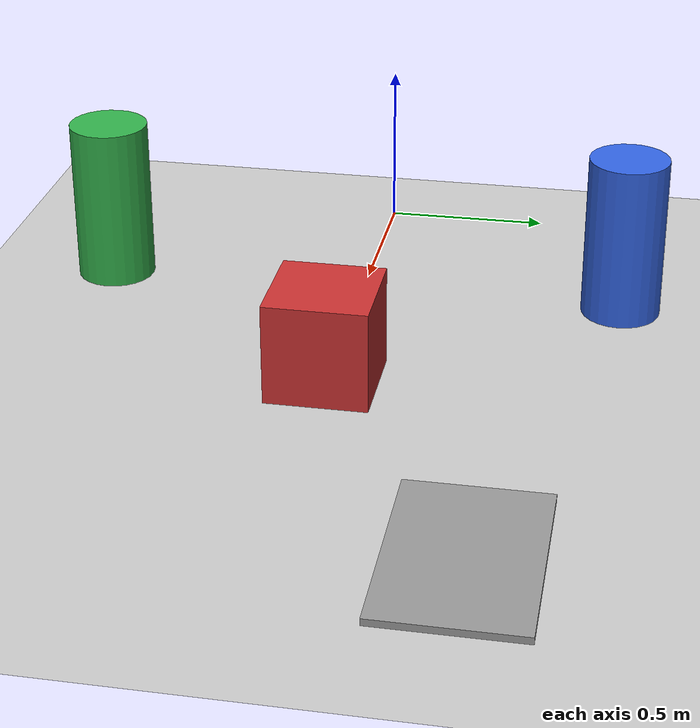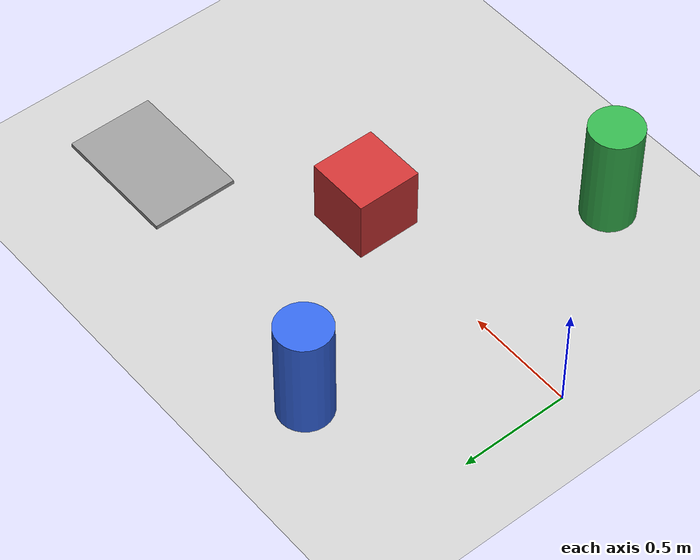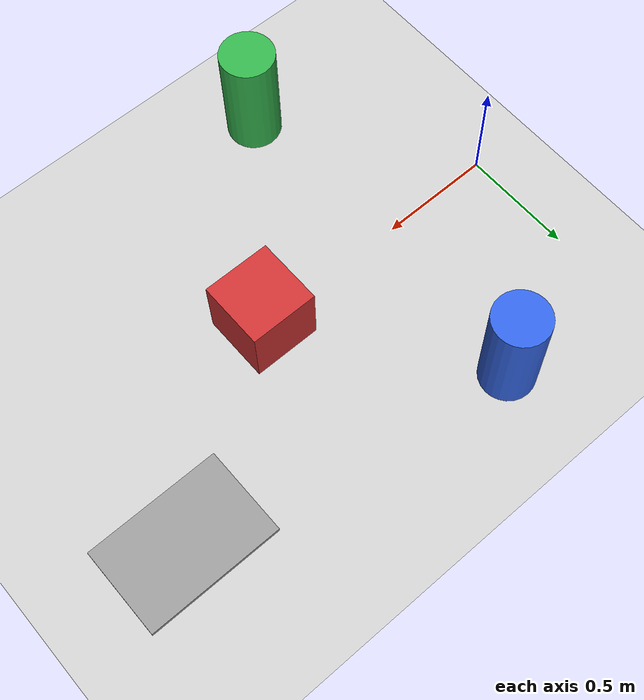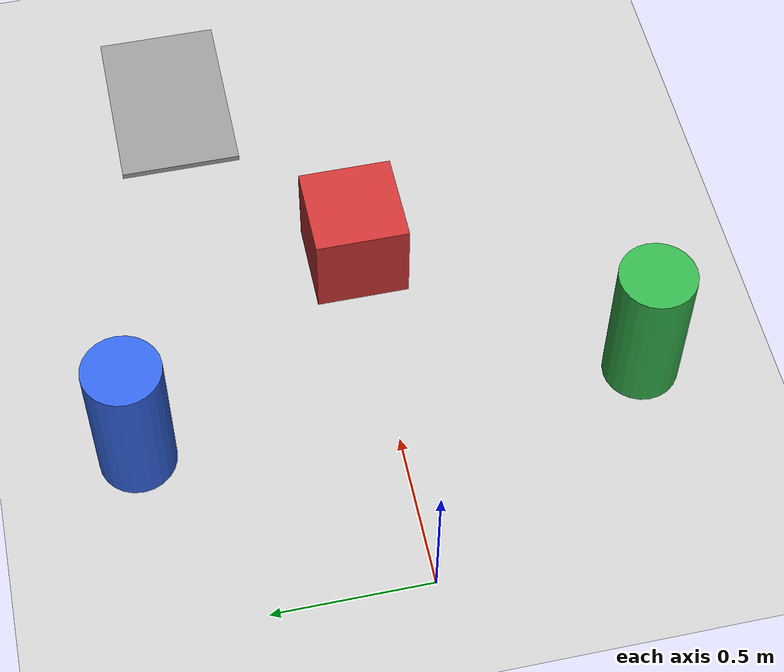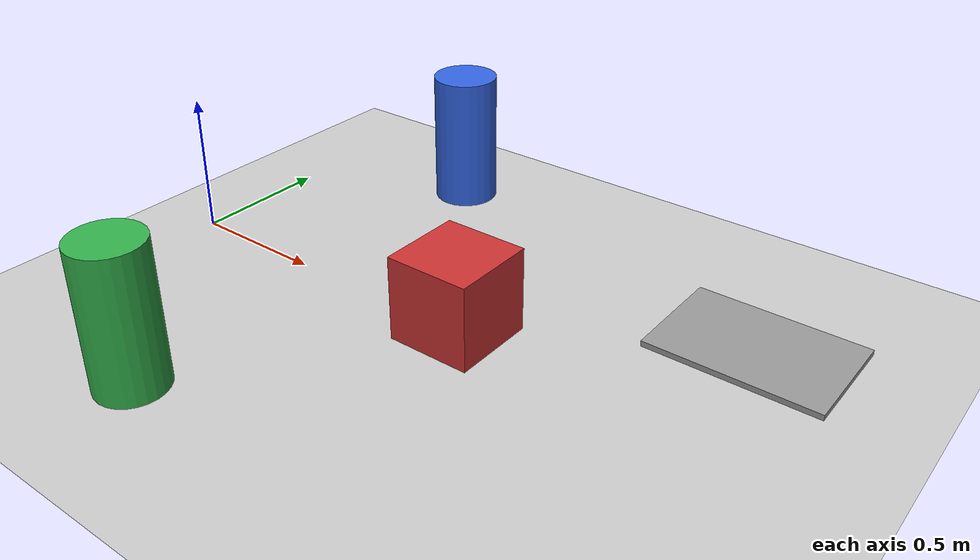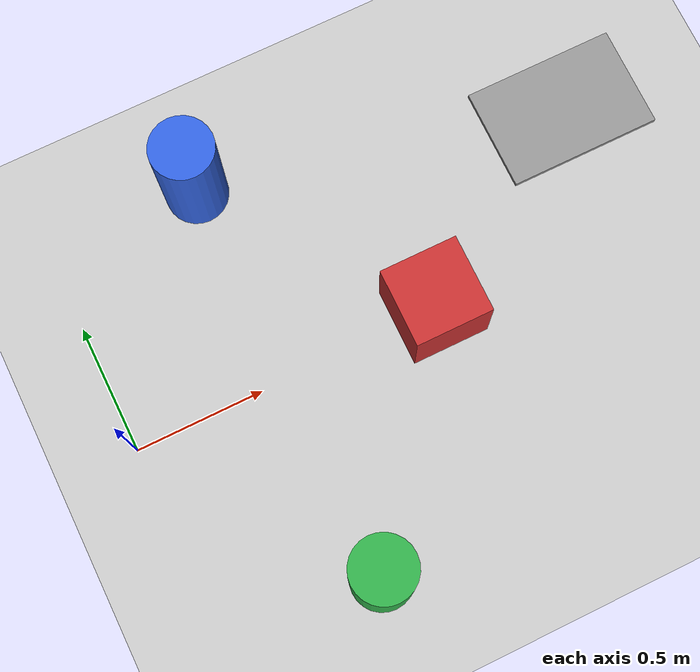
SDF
<?xml version="1.0" ?>
<sdf version="1.6">
  <world name="default">
    <include><uri>model://sun</uri></include>
    <include><uri>model://ground_plane</uri></include>

    <physics type="ode">
      <max_step_size>0.001</max_step_size>
      <real_time_update_rate>1000</real_time_update_rate>
      <real_time_factor>1.0</real_time_factor>
    </physics>

    <!-- 前方 1.2m 处的障碍箱 -->
    <model name="box_front">
      <static>true</static>
      <pose>1.2 0 0.15 0 0 0</pose>
      <link name="link">
        <collision name="c"><geometry><box><size>0.3 0.3 0.3</size></box></geometry></collision>
        <visual name="v">
          <geometry><box><size>0.3 0.3 0.3</size></box></geometry>
          <material><ambient>0.8 0.2 0.2 1</ambient><diffuse>0.8 0.2 0.2 1</diffuse></material>
        </visual>
      </link>
    </model>

    <!-- 左侧 0.8m 处的障碍柱 -->
    <model name="cylinder_left">
      <static>true</static>
      <pose>0.6 0.8 0.25 0 0 0</pose>
      <link name="link">
        <collision name="c"><geometry><cylinder><radius>0.12</radius><length>0.5</length></cylinder></geometry></collision>
        <visual name="v">
          <geometry><cylinder><radius>0.12</radius><length>0.5</length></cylinder></geometry>
          <material><ambient>0.2 0.4 0.9 1</ambient><diffuse>0.2 0.4 0.9 1</diffuse></material>
        </visual>
      </link>
    </model>

    <!-- 右侧 0.8m 处的障碍柱 -->
    <model name="cylinder_right">
      <static>true</static>
      <pose>0.6 -0.8 0.25 0 0 0</pose>
      <link name="link">
        <collision name="c"><geometry><cylinder><radius>0.12</radius><length>0.5</length></cylinder></geometry></collision>
        <visual name="v">
          <geometry><cylinder><radius>0.12</radius><length>0.5</length></cylinder></geometry>
          <material><ambient>0.2 0.7 0.3 1</ambient><diffuse>0.2 0.7 0.3 1</diffuse></material>
        </visual>
      </link>
    </model>

    <!-- 2cm 高的小台阶（后面测越障用） -->
    <model name="step_low">
      <static>true</static>
      <pose>2.0 0.5 0.01 0 0 0</pose>
      <link name="link">
        <collision name="c"><geometry><box><size>0.6 0.4 0.02</size></box></geometry></collision>
        <visual name="v">
          <geometry><box><size>0.6 0.4 0.02</size></box></geometry>
          <material><ambient>0.6 0.6 0.6 1</ambient><diffuse>0.6 0.6 0.6 1</diffuse></material>
        </visual>
      </link>
    </model>

    <gui>
      <camera name="user_camera">
        <pose>-1.5 -1.5 1.0 0 0 0.785</pose>
      </camera>
    </gui>
  </world>
</sdf>
